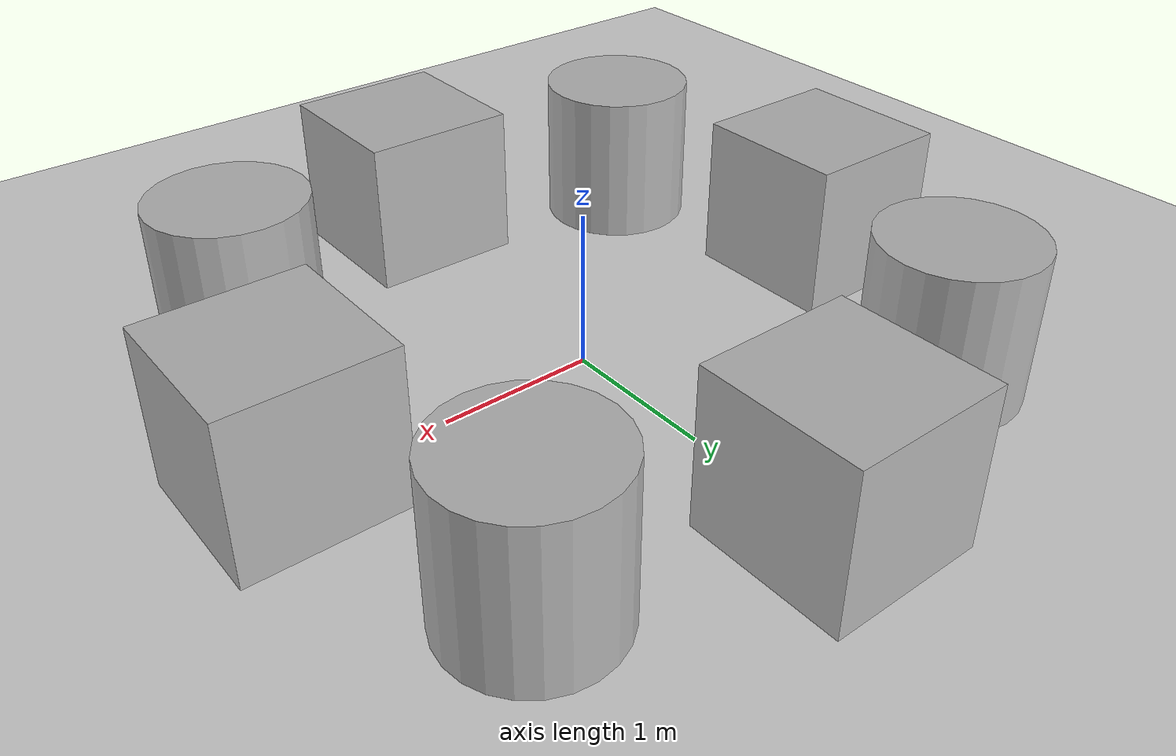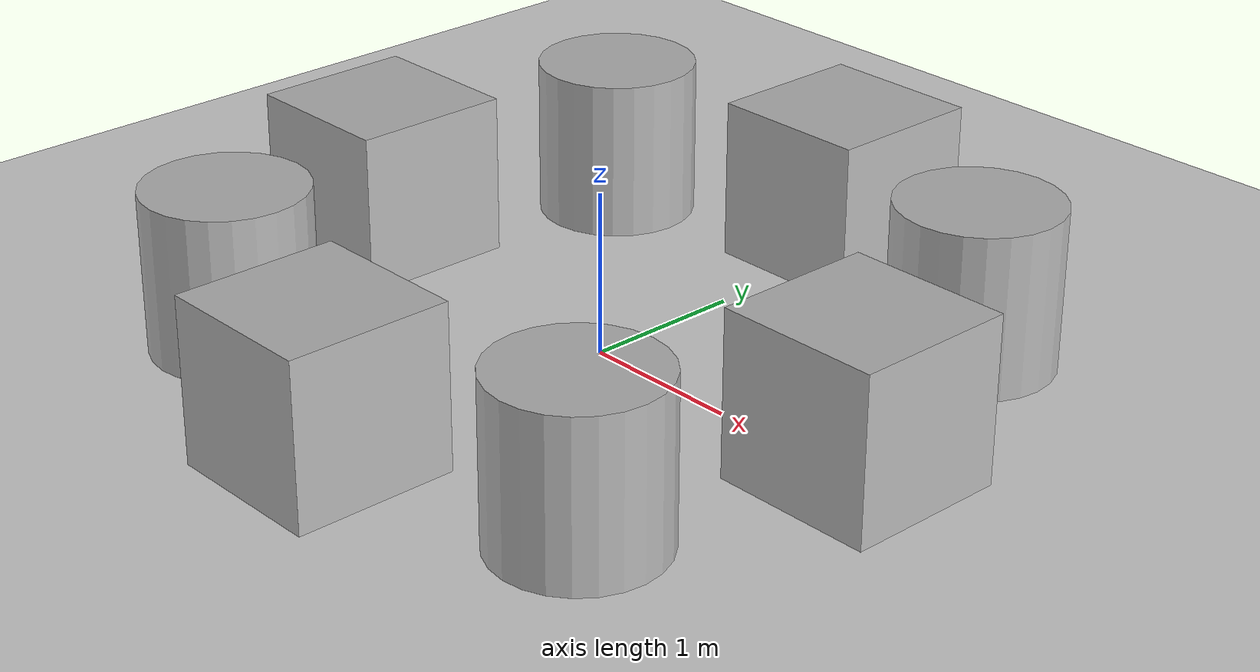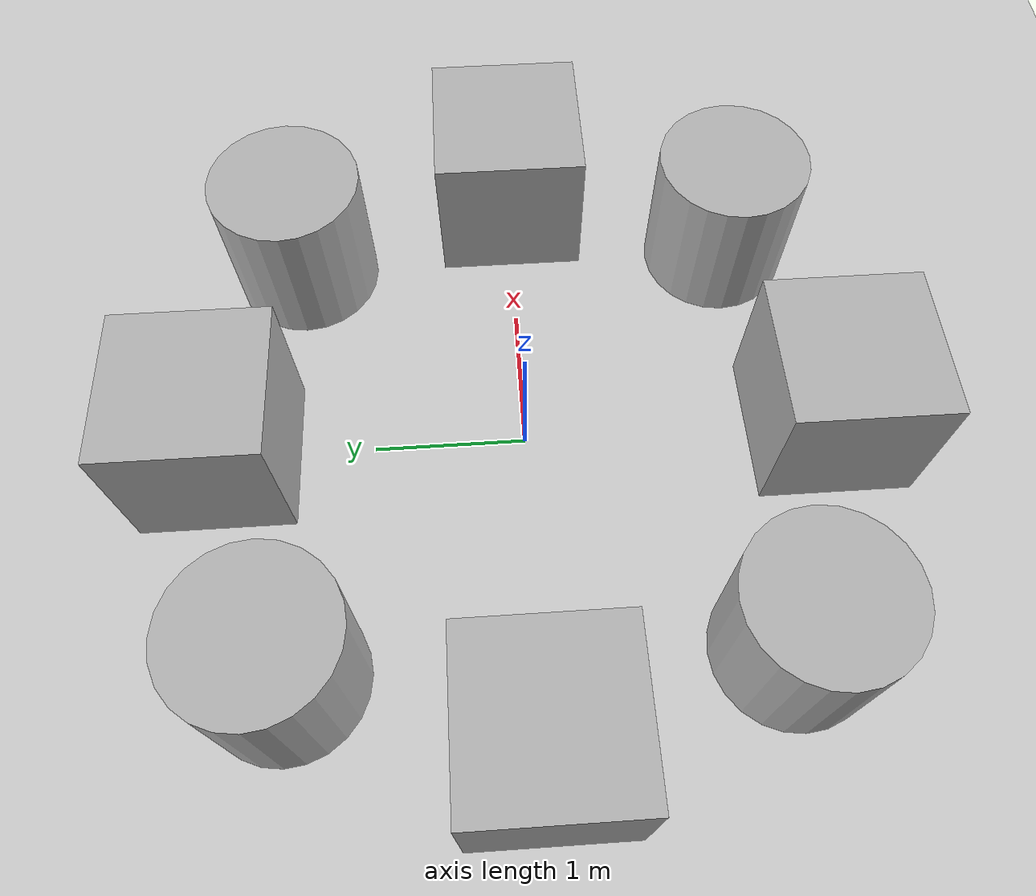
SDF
<sdf version='1.10'>
  <world name='empty'>
    <physics name='1ms' type='ignored'>
      <max_step_size>0.001</max_step_size>
      <real_time_factor>1</real_time_factor>
      <real_time_update_rate>1000</real_time_update_rate>
    </physics>
    <plugin name='gz::sim::systems::Physics' filename='gz-sim-physics-system'/>
    <plugin name='gz::sim::systems::UserCommands' filename='gz-sim-user-commands-system'/>
    <plugin name='gz::sim::systems::SceneBroadcaster' filename='gz-sim-scene-broadcaster-system'/>
    <plugin name='gz::sim::systems::Contact' filename='gz-sim-contact-system'/>
    <gravity>0 0 -9.8000000000000007</gravity>
    <magnetic_field>5.5644999999999998e-06 2.2875799999999999e-05 -4.2388400000000002e-05</magnetic_field>
    <atmosphere type='adiabatic'/>
    <scene>
      <ambient>0.400000006 0.400000006 0.400000006 1</ambient>
      <background>0.699999988 0.699999988 0.699999988 1</background>
      <shadows>true</shadows>
    </scene>
    <model name='ground_plane'>
      <static>true</static>
      <link name='link'>
        <collision name='collision'>
          <geometry>
            <plane>
              <normal>0 0 1</normal>
              <size>100 100</size>
            </plane>
          </geometry>
          <surface>
            <friction>
              <ode/>
            </friction>
            <bounce/>
            <contact/>
          </surface>
        </collision>
        <visual name='visual'>
          <geometry>
            <plane>
              <normal>0 0 1</normal>
              <size>100 100</size>
            </plane>
          </geometry>
          <material>
            <ambient>0.800000012 0.800000012 0.800000012 1</ambient>
            <diffuse>0.800000012 0.800000012 0.800000012 1</diffuse>
            <specular>0.800000012 0.800000012 0.800000012 1</specular>
          </material>
        </visual>
        <pose>0 0 0 0 0 0</pose>
        <inertial>
          <pose>0 0 0 0 0 0</pose>
          <mass>1</mass>
          <inertia>
            <ixx>1</ixx>
            <ixy>0</ixy>
            <ixz>0</ixz>
            <iyy>1</iyy>
            <iyz>0</iyz>
            <izz>1</izz>
          </inertia>
        </inertial>
        <enable_wind>false</enable_wind>
      </link>
      <pose>0 0 0 0 0 0</pose>
      <self_collide>false</self_collide>
    </model>
    <model name='box'>
      <pose>0 2 0.5 0 0 0</pose>
      <link name='box_link'>
        <inertial>
          <inertia>
            <ixx>0.16666</ixx>
            <ixy>0</ixy>
            <ixz>0</ixz>
            <iyy>0.16666</iyy>
            <iyz>0</iyz>
            <izz>0.16666</izz>
          </inertia>
          <mass>1</mass>
          <pose>0 0 0 0 0 0</pose>
        </inertial>
        <collision name='box_collision'>
          <geometry>
            <box>
              <size>1 1 1</size>
            </box>
          </geometry>
          <surface>
            <friction>
              <ode/>
            </friction>
            <bounce/>
            <contact/>
          </surface>
        </collision>
        <visual name='box_visual'>
          <geometry>
            <box>
              <size>1 1 1</size>
            </box>
          </geometry>
          <material>
            <ambient>0.300000012 0.300000012 0.300000012 1</ambient>
            <diffuse>0.699999988 0.699999988 0.699999988 1</diffuse>
            <specular>1 1 1 1</specular>
          </material>
        </visual>
        <pose>0 0 0 0 0 0</pose>
        <enable_wind>false</enable_wind>
      </link>
      <static>true</static>
      <self_collide>false</self_collide>
    </model>
    <model name='box_0'>
      <pose>0 -2 0.5 0 0 0</pose>
      <link name='box_link'>
        <inertial>
          <inertia>
            <ixx>0.16666</ixx>
            <ixy>0</ixy>
            <ixz>0</ixz>
            <iyy>0.16666</iyy>
            <iyz>0</iyz>
            <izz>0.16666</izz>
          </inertia>
          <mass>1</mass>
          <pose>0 0 0 0 0 0</pose>
        </inertial>
        <collision name='box_collision'>
          <geometry>
            <box>
              <size>1 1 1</size>
            </box>
          </geometry>
          <surface>
            <friction>
              <ode/>
            </friction>
            <bounce/>
            <contact/>
          </surface>
        </collision>
        <visual name='box_visual'>
          <geometry>
            <box>
              <size>1 1 1</size>
            </box>
          </geometry>
          <material>
            <ambient>0.300000012 0.300000012 0.300000012 1</ambient>
            <diffuse>0.699999988 0.699999988 0.699999988 1</diffuse>
            <specular>1 1 1 1</specular>
          </material>
        </visual>
        <pose>0 0 0 0 0 0</pose>
        <enable_wind>false</enable_wind>
      </link>
      <static>true</static>
      <self_collide>false</self_collide>
    </model>
    <model name='box_1'>
      <pose>-2 0 0.5 0 0 0</pose>
      <link name='box_link'>
        <inertial>
          <inertia>
            <ixx>0.16666</ixx>
            <ixy>0</ixy>
            <ixz>0</ixz>
            <iyy>0.16666</iyy>
            <iyz>0</iyz>
            <izz>0.16666</izz>
          </inertia>
          <mass>1</mass>
          <pose>0 0 0 0 0 0</pose>
        </inertial>
        <collision name='box_collision'>
          <geometry>
            <box>
              <size>1 1 1</size>
            </box>
          </geometry>
          <surface>
            <friction>
              <ode/>
            </friction>
            <bounce/>
            <contact/>
          </surface>
        </collision>
        <visual name='box_visual'>
          <geometry>
            <box>
              <size>1 1 1</size>
            </box>
          </geometry>
          <material>
            <ambient>0.300000012 0.300000012 0.300000012 1</ambient>
            <diffuse>0.699999988 0.699999988 0.699999988 1</diffuse>
            <specular>1 1 1 1</specular>
          </material>
        </visual>
        <pose>0 0 0 0 0 0</pose>
        <enable_wind>false</enable_wind>
      </link>
      <static>true</static>
      <self_collide>false</self_collide>
    </model>
    <model name='box_2'>
      <pose>2 0 0.5 0 0 0</pose>
      <link name='box_link'>
        <inertial>
          <inertia>
            <ixx>0.16666</ixx>
            <ixy>0</ixy>
            <ixz>0</ixz>
            <iyy>0.16666</iyy>
            <iyz>0</iyz>
            <izz>0.16666</izz>
          </inertia>
          <mass>1</mass>
          <pose>0 0 0 0 0 0</pose>
        </inertial>
        <collision name='box_collision'>
          <geometry>
            <box>
              <size>1 1 1</size>
            </box>
          </geometry>
          <surface>
            <friction>
              <ode/>
            </friction>
            <bounce/>
            <contact/>
          </surface>
        </collision>
        <visual name='box_visual'>
          <geometry>
            <box>
              <size>1 1 1</size>
            </box>
          </geometry>
          <material>
            <ambient>0.300000012 0.300000012 0.300000012 1</ambient>
            <diffuse>0.699999988 0.699999988 0.699999988 1</diffuse>
            <specular>1 1 1 1</specular>
          </material>
        </visual>
        <pose>0 0 0 0 0 0</pose>
        <enable_wind>false</enable_wind>
      </link>
      <static>true</static>
      <self_collide>false</self_collide>
    </model>
    <model name='cylinder'>
      <pose>-1.5 -1.5 0.5 0 0 0</pose>
      <link name='cylinder_link'>
        <inertial>
          <inertia>
            <ixx>0.14580000000000001</ixx>
            <ixy>0</ixy>
            <ixz>0</ixz>
            <iyy>0.14580000000000001</iyy>
            <iyz>0</iyz>
            <izz>0.125</izz>
          </inertia>
          <mass>1</mass>
          <pose>0 0 0 0 0 0</pose>
        </inertial>
        <collision name='cylinder_collision'>
          <geometry>
            <cylinder>
              <radius>0.5</radius>
              <length>1</length>
            </cylinder>
          </geometry>
          <surface>
            <friction>
              <ode/>
            </friction>
            <bounce/>
            <contact/>
          </surface>
        </collision>
        <visual name='cylinder_visual'>
          <geometry>
            <cylinder>
              <radius>0.5</radius>
              <length>1</length>
            </cylinder>
          </geometry>
          <material>
            <ambient>0.300000012 0.300000012 0.300000012 1</ambient>
            <diffuse>0.699999988 0.699999988 0.699999988 1</diffuse>
            <specular>1 1 1 1</specular>
          </material>
        </visual>
        <pose>0 0 0 0 0 0</pose>
        <enable_wind>false</enable_wind>
      </link>
      <static>true</static>
      <self_collide>false</self_collide>
    </model>
    <model name='cylinder_0'>
      <pose>-1.5 1.5 0.5 0 0 0</pose>
      <link name='cylinder_link'>
        <inertial>
          <inertia>
            <ixx>0.14580000000000001</ixx>
            <ixy>0</ixy>
            <ixz>0</ixz>
            <iyy>0.14580000000000001</iyy>
            <iyz>0</iyz>
            <izz>0.125</izz>
          </inertia>
          <mass>1</mass>
          <pose>0 0 0 0 0 0</pose>
        </inertial>
        <collision name='cylinder_collision'>
          <geometry>
            <cylinder>
              <radius>0.5</radius>
              <length>1</length>
            </cylinder>
          </geometry>
          <surface>
            <friction>
              <ode/>
            </friction>
            <bounce/>
            <contact/>
          </surface>
        </collision>
        <visual name='cylinder_visual'>
          <geometry>
            <cylinder>
              <radius>0.5</radius>
              <length>1</length>
            </cylinder>
          </geometry>
          <material>
            <ambient>0.300000012 0.300000012 0.300000012 1</ambient>
            <diffuse>0.699999988 0.699999988 0.699999988 1</diffuse>
            <specular>1 1 1 1</specular>
          </material>
        </visual>
        <pose>0 0 0 0 0 0</pose>
        <enable_wind>false</enable_wind>
      </link>
      <static>true</static>
      <self_collide>false</self_collide>
    </model>
    <model name='cylinder_1'>
      <pose>1.5 1.5 0.5 0 0 0</pose>
      <link name='cylinder_link'>
        <inertial>
          <inertia>
            <ixx>0.14580000000000001</ixx>
            <ixy>0</ixy>
            <ixz>0</ixz>
            <iyy>0.14580000000000001</iyy>
            <iyz>0</iyz>
            <izz>0.125</izz>
          </inertia>
          <mass>1</mass>
          <pose>0 0 0 0 0 0</pose>
        </inertial>
        <collision name='cylinder_collision'>
          <geometry>
            <cylinder>
              <radius>0.5</radius>
              <length>1</length>
            </cylinder>
          </geometry>
          <surface>
            <friction>
              <ode/>
            </friction>
            <bounce/>
            <contact/>
          </surface>
        </collision>
        <visual name='cylinder_visual'>
          <geometry>
            <cylinder>
              <radius>0.5</radius>
              <length>1</length>
            </cylinder>
          </geometry>
          <material>
            <ambient>0.300000012 0.300000012 0.300000012 1</ambient>
            <diffuse>0.699999988 0.699999988 0.699999988 1</diffuse>
            <specular>1 1 1 1</specular>
          </material>
        </visual>
        <pose>0 0 0 0 0 0</pose>
        <enable_wind>false</enable_wind>
      </link>
      <static>true</static>
      <self_collide>false</self_collide>
    </model>
    <model name='cylinder_2'>
      <pose>1.5 -1.5 0.5 0 0 0</pose>
      <link name='cylinder_link'>
        <inertial>
          <inertia>
            <ixx>0.14580000000000001</ixx>
            <ixy>0</ixy>
            <ixz>0</ixz>
            <iyy>0.14580000000000001</iyy>
            <iyz>0</iyz>
            <izz>0.125</izz>
          </inertia>
          <mass>1</mass>
          <pose>0 0 0 0 0 0</pose>
        </inertial>
        <collision name='cylinder_collision'>
          <geometry>
            <cylinder>
              <radius>0.5</radius>
              <length>1</length>
            </cylinder>
          </geometry>
          <surface>
            <friction>
              <ode/>
            </friction>
            <bounce/>
            <contact/>
          </surface>
        </collision>
        <visual name='cylinder_visual'>
          <geometry>
            <cylinder>
              <radius>0.5</radius>
              <length>1</length>
            </cylinder>
          </geometry>
          <material>
            <ambient>0.300000012 0.300000012 0.300000012 1</ambient>
            <diffuse>0.699999988 0.699999988 0.699999988 1</diffuse>
            <specular>1 1 1 1</specular>
          </material>
        </visual>
        <pose>0 0 0 0 0 0</pose>
        <enable_wind>false</enable_wind>
      </link>
      <static>true</static>
      <self_collide>false</self_collide>
    </model>
    <light name='sun' type='directional'>
      <pose>0 0 10 0 0 0</pose>
      <cast_shadows>true</cast_shadows>
      <intensity>1</intensity>
      <direction>-0.5 0.10000000000000001 -0.90000000000000002</direction>
      <diffuse>0.800000012 0.800000012 0.800000012 1</diffuse>
      <specular>0.200000003 0.200000003 0.200000003 1</specular>
      <attenuation>
        <range>1000</range>
        <linear>0.01</linear>
        <constant>0.90000000000000002</constant>
        <quadratic>0.001</quadratic>
      </attenuation>
      <spot>
        <inner_angle>0</inner_angle>
        <outer_angle>0</outer_angle>
        <falloff>0</falloff>
      </spot>
    </light>
  </world>
</sdf>
